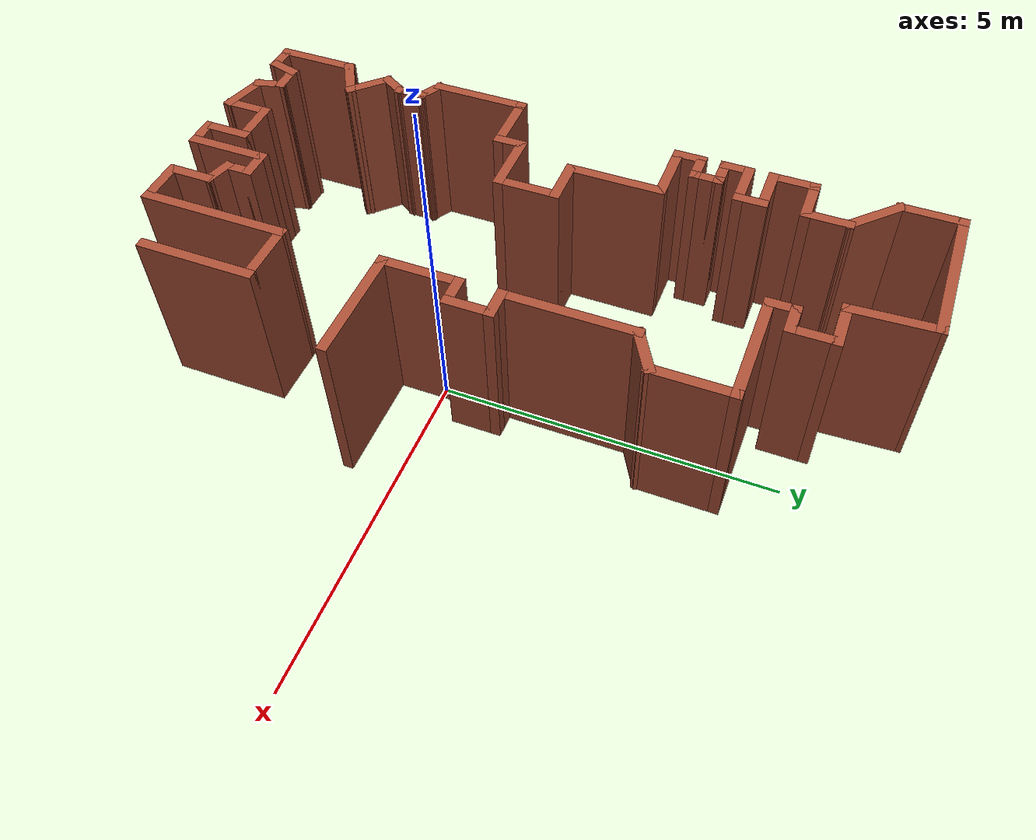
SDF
<sdf version="1.6">
 <model name="map_59">
  <pose>2.96986 0.975899 0 0 -0 0</pose>
  <link name="Wall_0">
   <collision name="Wall_0_Collision">
    <geometry><box><size>2.25 0.15 2.5</size></box></geometry>
    <pose>0 0 1.25 0 -0 0</pose>
   </collision>
   <visual name="Wall_0_Visual">
    <pose>0 0 1.25 0 -0 0</pose>
    <geometry><box><size>2.25 0.15 2.5</size></box></geometry>
    <material>
     <script><uri>file://media/materials/scripts/gazebo.material</uri><name>Gazebo/Bricks</name></script>
     <ambient>1 1 1 1</ambient>
    </material>
    <meta><layer>0</layer></meta>
   </visual>
   <pose>-5.34713 5.38602 0 0 -0 3.14159</pose>
  </link>
  <link name="Wall_1">
   <collision name="Wall_1_Collision">
    <geometry><box><size>1 0.15 2.5</size></box></geometry>
    <pose>0 0 1.25 0 -0 0</pose>
   </collision>
   <visual name="Wall_1_Visual">
    <pose>0 0 1.25 0 -0 0</pose>
    <geometry><box><size>1 0.15 2.5</size></box></geometry>
    <material>
     <script><uri>file://media/materials/scripts/gazebo.material</uri><name>Gazebo/Bricks</name></script>
     <ambient>1 1 1 1</ambient>
    </material>
    <meta><layer>0</layer></meta>
   </visual>
   <pose>-6.39713 4.96102 0 0 -0 -1.5708</pose>
  </link>
  <link name="Wall_165">
   <collision name="Wall_165_Collision">
    <geometry><box><size>1.75 0.15 2.5</size></box></geometry>
    <pose>0 0 1.25 0 -0 0</pose>
   </collision>
   <visual name="Wall_165_Visual">
    <pose>0 0 1.25 0 -0 0</pose>
    <geometry><box><size>1.75 0.15 2.5</size></box></geometry>
    <material>
     <script><uri>file://media/materials/scripts/gazebo.material</uri><name>Gazebo/Bricks</name></script>
     <ambient>1 1 1 1</ambient>
    </material>
    <meta><layer>0</layer></meta>
   </visual>
   <pose>-2.11013 -1.69005 0 0 -0 3.14159</pose>
  </link>
  <link name="Wall_166">
   <collision name="Wall_166_Collision">
    <geometry><box><size>1.25 0.15 2.5</size></box></geometry>
    <pose>0 0 1.25 0 -0 0</pose>
   </collision>
   <visual name="Wall_166_Visual">
    <pose>0 0 1.25 0 -0 0</pose>
    <geometry><box><size>1.25 0.15 2.5</size></box></geometry>
    <material>
     <script><uri>file://media/materials/scripts/gazebo.material</uri><name>Gazebo/Bricks</name></script>
     <ambient>1 1 1 1</ambient>
    </material>
    <meta><layer>0</layer></meta>
   </visual>
   <pose>-2.91013 -1.14005 0 0 -0 1.5708</pose>
  </link>
  <link name="Wall_167">
   <collision name="Wall_167_Collision">
    <geometry><box><size>0.5 0.15 2.5</size></box></geometry>
    <pose>0 0 1.25 0 -0 0</pose>
   </collision>
   <visual name="Wall_167_Visual">
    <pose>0 0 1.25 0 -0 0</pose>
    <geometry><box><size>0.5 0.15 2.5</size></box></geometry>
    <material>
     <script><uri>file://media/materials/scripts/gazebo.material</uri><name>Gazebo/Bricks</name></script>
     <ambient>1 1 1 1</ambient>
    </material>
    <meta><layer>0</layer></meta>
   </visual>
   <pose>-2.73513 -0.590047 0 0 -0 0</pose>
  </link>
  <link name="Wall_168">
   <collision name="Wall_168_Collision">
    <geometry><box><size>0.75 0.15 2.5</size></box></geometry>
    <pose>0 0 1.25 0 -0 0</pose>
   </collision>
   <visual name="Wall_168_Visual">
    <pose>0 0 1.25 0 -0 0</pose>
    <geometry><box><size>0.75 0.15 2.5</size></box></geometry>
    <material>
     <script><uri>file://media/materials/scripts/gazebo.material</uri><name>Gazebo/Bricks</name></script>
     <ambient>1 1 1 1</ambient>
    </material>
    <meta><layer>0</layer></meta>
   </visual>
   <pose>-2.56013 -0.290047 0 0 -0 1.5708</pose>
  </link>
  <link name="Wall_169">
   <collision name="Wall_169_Collision">
    <geometry><box><size>0.5 0.15 2.5</size></box></geometry>
    <pose>0 0 1.25 0 -0 0</pose>
   </collision>
   <visual name="Wall_169_Visual">
    <pose>0 0 1.25 0 -0 0</pose>
    <geometry><box><size>0.5 0.15 2.5</size></box></geometry>
    <material>
     <script><uri>file://media/materials/scripts/gazebo.material</uri><name>Gazebo/Bricks</name></script>
     <ambient>1 1 1 1</ambient>
    </material>
    <meta><layer>0</layer></meta>
   </visual>
   <pose>-2.73513 0.009953 0 0 -0 3.14159</pose>
  </link>
  <link name="Wall_17">
   <collision name="Wall_17_Collision">
    <geometry><box><size>0.5 0.15 2.5</size></box></geometry>
    <pose>0 0 1.25 0 -0 0</pose>
   </collision>
   <visual name="Wall_17_Visual">
    <pose>0 0 1.25 0 -0 0</pose>
    <geometry><box><size>0.5 0.15 2.5</size></box></geometry>
    <material>
     <script><uri>file://media/materials/scripts/gazebo.material</uri><name>Gazebo/Bricks</name></script>
     <ambient>1 1 1 1</ambient>
    </material>
    <meta><layer>0</layer></meta>
   </visual>
   <pose>-6.39609 2.20998 0 0 -0 -1.5708</pose>
  </link>
  <link name="Wall_170">
   <collision name="Wall_170_Collision">
    <geometry><box><size>2 0.15 2.5</size></box></geometry>
    <pose>0 0 1.25 0 -0 0</pose>
   </collision>
   <visual name="Wall_170_Visual">
    <pose>0 0 1.25 0 -0 0</pose>
    <geometry><box><size>2 0.15 2.5</size></box></geometry>
    <material>
     <script><uri>file://media/materials/scripts/gazebo.material</uri><name>Gazebo/Bricks</name></script>
     <ambient>1 1 1 1</ambient>
    </material>
    <meta><layer>0</layer></meta>
   </visual>
   <pose>-2.91013 0.934953 0 0 -0 1.5708</pose>
  </link>
  <link name="Wall_171">
   <collision name="Wall_171_Collision">
    <geometry><box><size>0.75 0.15 2.5</size></box></geometry>
    <pose>0 0 1.25 0 -0 0</pose>
   </collision>
   <visual name="Wall_171_Visual">
    <pose>0 0 1.25 0 -0 0</pose>
    <geometry><box><size>0.75 0.15 2.5</size></box></geometry>
    <material>
     <script><uri>file://media/materials/scripts/gazebo.material</uri><name>Gazebo/Bricks</name></script>
     <ambient>1 1 1 1</ambient>
    </material>
    <meta><layer>0</layer></meta>
   </visual>
   <pose>-2.65033 2.00995 0 0 -0 0.523599</pose>
  </link>
  <link name="Wall_172">
   <collision name="Wall_172_Collision">
    <geometry><box><size>1.25 0.15 2.5</size></box></geometry>
    <pose>0 0 1.25 0 -0 0</pose>
   </collision>
   <visual name="Wall_172_Visual">
    <pose>0 0 1.25 0 -0 0</pose>
    <geometry><box><size>1.25 0.15 2.5</size></box></geometry>
    <material>
     <script><uri>file://media/materials/scripts/gazebo.material</uri><name>Gazebo/Bricks</name></script>
     <ambient>1 1 1 1</ambient>
    </material>
    <meta><layer>0</layer></meta>
   </visual>
   <pose>-2.39052 2.70995 0 0 -0 1.5708</pose>
  </link>
  <link name="Wall_173">
   <collision name="Wall_173_Collision">
    <geometry><box><size>1.75 0.15 2.5</size></box></geometry>
    <pose>0 0 1.25 0 -0 0</pose>
   </collision>
   <visual name="Wall_173_Visual">
    <pose>0 0 1.25 0 -0 0</pose>
    <geometry><box><size>1.75 0.15 2.5</size></box></geometry>
    <material>
     <script><uri>file://media/materials/scripts/gazebo.material</uri><name>Gazebo/Bricks</name></script>
     <ambient>1 1 1 1</ambient>
    </material>
    <meta><layer>0</layer></meta>
   </visual>
   <pose>-3.19052 3.25995 0 0 -0 3.14159</pose>
  </link>
  <link name="Wall_174">
   <collision name="Wall_174_Collision">
    <geometry><box><size>0.5 0.15 2.5</size></box></geometry>
    <pose>0 0 1.25 0 -0 0</pose>
   </collision>
   <visual name="Wall_174_Visual">
    <pose>0 0 1.25 0 -0 0</pose>
    <geometry><box><size>0.5 0.15 2.5</size></box></geometry>
    <material>
     <script><uri>file://media/materials/scripts/gazebo.material</uri><name>Gazebo/Bricks</name></script>
     <ambient>1 1 1 1</ambient>
    </material>
    <meta><layer>0</layer></meta>
   </visual>
   <pose>-3.99052 3.43495 0 0 -0 1.5708</pose>
  </link>
  <link name="Wall_175">
   <collision name="Wall_175_Collision">
    <geometry><box><size>0.5 0.15 2.5</size></box></geometry>
    <pose>0 0 1.25 0 -0 0</pose>
   </collision>
   <visual name="Wall_175_Visual">
    <pose>0 0 1.25 0 -0 0</pose>
    <geometry><box><size>0.5 0.15 2.5</size></box></geometry>
    <material>
     <script><uri>file://media/materials/scripts/gazebo.material</uri><name>Gazebo/Bricks</name></script>
     <ambient>1 1 1 1</ambient>
    </material>
    <meta><layer>0</layer></meta>
   </visual>
   <pose>-3.81552 3.60995 0 0 -0 0</pose>
  </link>
  <link name="Wall_176">
   <collision name="Wall_176_Collision">
    <geometry><box><size>0.75 0.15 2.5</size></box></geometry>
    <pose>0 0 1.25 0 -0 0</pose>
   </collision>
   <visual name="Wall_176_Visual">
    <pose>0 0 1.25 0 -0 0</pose>
    <geometry><box><size>0.75 0.15 2.5</size></box></geometry>
    <material>
     <script><uri>file://media/materials/scripts/gazebo.material</uri><name>Gazebo/Bricks</name></script>
     <ambient>1 1 1 1</ambient>
    </material>
    <meta><layer>0</layer></meta>
   </visual>
   <pose>-3.64052 3.90995 0 0 -0 1.5708</pose>
  </link>
  <link name="Wall_177">
   <collision name="Wall_177_Collision">
    <geometry><box><size>0.75 0.15 2.5</size></box></geometry>
    <pose>0 0 1.25 0 -0 0</pose>
   </collision>
   <visual name="Wall_177_Visual">
    <pose>0 0 1.25 0 -0 0</pose>
    <geometry><box><size>0.75 0.15 2.5</size></box></geometry>
    <material>
     <script><uri>file://media/materials/scripts/gazebo.material</uri><name>Gazebo/Bricks</name></script>
     <ambient>1 1 1 1</ambient>
    </material>
    <meta><layer>0</layer></meta>
   </visual>
   <pose>-3.94052 4.20995 0 0 -0 3.14159</pose>
  </link>
  <link name="Wall_178">
   <collision name="Wall_178_Collision">
    <geometry><box><size>1.32743 0.15 2.5</size></box></geometry>
    <pose>0 0 1.25 0 -0 0</pose>
   </collision>
   <visual name="Wall_178_Visual">
    <pose>0 0 1.25 0 -0 0</pose>
    <geometry><box><size>1.32743 0.15 2.5</size></box></geometry>
    <material>
     <script><uri>file://media/materials/scripts/gazebo.material</uri><name>Gazebo/Bricks</name></script>
     <ambient>1 1 1 1</ambient>
    </material>
    <meta><layer>0</layer></meta>
   </visual>
   <pose>-4.26883 4.79799 0 0 -0 1.6189</pose>
  </link>
  <link name="Wall_18">
   <collision name="Wall_18_Collision">
    <geometry><box><size>0.5 0.15 2.5</size></box></geometry>
    <pose>0 0 1.25 0 -0 0</pose>
   </collision>
   <visual name="Wall_18_Visual">
    <pose>0 0 1.25 0 -0 0</pose>
    <geometry><box><size>0.5 0.15 2.5</size></box></geometry>
    <material>
     <script><uri>file://media/materials/scripts/gazebo.material</uri><name>Gazebo/Bricks</name></script>
     <ambient>1 1 1 1</ambient>
    </material>
    <meta><layer>0</layer></meta>
   </visual>
   <pose>-6.22109 2.03498 0 0 -0 0</pose>
  </link>
  <link name="Wall_19">
   <collision name="Wall_19_Collision">
    <geometry><box><size>0.5 0.15 2.5</size></box></geometry>
    <pose>0 0 1.25 0 -0 0</pose>
   </collision>
   <visual name="Wall_19_Visual">
    <pose>0 0 1.25 0 -0 0</pose>
    <geometry><box><size>0.5 0.15 2.5</size></box></geometry>
    <material>
     <script><uri>file://media/materials/scripts/gazebo.material</uri><name>Gazebo/Bricks</name></script>
     <ambient>1 1 1 1</ambient>
    </material>
    <meta><layer>0</layer></meta>
   </visual>
   <pose>-6.04609 1.85998 0 0 -0 -1.5708</pose>
  </link>
  <link name="Wall_2">
   <collision name="Wall_2_Collision">
    <geometry><box><size>1 0.15 2.5</size></box></geometry>
    <pose>0 0 1.25 0 -0 0</pose>
   </collision>
   <visual name="Wall_2_Visual">
    <pose>0 0 1.25 0 -0 0</pose>
    <geometry><box><size>1 0.15 2.5</size></box></geometry>
    <material>
     <script><uri>file://media/materials/scripts/gazebo.material</uri><name>Gazebo/Bricks</name></script>
     <ambient>1 1 1 1</ambient>
    </material>
    <meta><layer>0</layer></meta>
   </visual>
   <pose>-6.09661 4.2355 0 0 -0 -0.785398</pose>
  </link>
  <link name="Wall_20">
   <collision name="Wall_20_Collision">
    <geometry><box><size>0.5 0.15 2.5</size></box></geometry>
    <pose>0 0 1.25 0 -0 0</pose>
   </collision>
   <visual name="Wall_20_Visual">
    <pose>0 0 1.25 0 -0 0</pose>
    <geometry><box><size>0.5 0.15 2.5</size></box></geometry>
    <material>
     <script><uri>file://media/materials/scripts/gazebo.material</uri><name>Gazebo/Bricks</name></script>
     <ambient>1 1 1 1</ambient>
    </material>
    <meta><layer>0</layer></meta>
   </visual>
   <pose>-6.22109 1.68498 0 0 -0 3.14159</pose>
  </link>
  <link name="Wall_21">
   <collision name="Wall_21_Collision">
    <geometry><box><size>0.5 0.15 2.5</size></box></geometry>
    <pose>0 0 1.25 0 -0 0</pose>
   </collision>
   <visual name="Wall_21_Visual">
    <pose>0 0 1.25 0 -0 0</pose>
    <geometry><box><size>0.5 0.15 2.5</size></box></geometry>
    <material>
     <script><uri>file://media/materials/scripts/gazebo.material</uri><name>Gazebo/Bricks</name></script>
     <ambient>1 1 1 1</ambient>
    </material>
    <meta><layer>0</layer></meta>
   </visual>
   <pose>-6.39609 1.50998 0 0 -0 -1.5708</pose>
  </link>
  <link name="Wall_24">
   <collision name="Wall_24_Collision">
    <geometry><box><size>1 0.15 2.5</size></box></geometry>
    <pose>0 0 1.25 0 -0 0</pose>
   </collision>
   <visual name="Wall_24_Visual">
    <pose>0 0 1.25 0 -0 0</pose>
    <geometry><box><size>1 0.15 2.5</size></box></geometry>
    <material>
     <script><uri>file://media/materials/scripts/gazebo.material</uri><name>Gazebo/Bricks</name></script>
     <ambient>1 1 1 1</ambient>
    </material>
    <meta><layer>0</layer></meta>
   </visual>
   <pose>-5.97109 1.33498 0 0 -0 0</pose>
  </link>
  <link name="Wall_25">
   <collision name="Wall_25_Collision">
    <geometry><box><size>1.5 0.15 2.5</size></box></geometry>
    <pose>0 0 1.25 0 -0 0</pose>
   </collision>
   <visual name="Wall_25_Visual">
    <pose>0 0 1.25 0 -0 0</pose>
    <geometry><box><size>1.5 0.15 2.5</size></box></geometry>
    <material>
     <script><uri>file://media/materials/scripts/gazebo.material</uri><name>Gazebo/Bricks</name></script>
     <ambient>1 1 1 1</ambient>
    </material>
    <meta><layer>0</layer></meta>
   </visual>
   <pose>-5.54609 0.65998 0 0 -0 -1.5708</pose>
  </link>
  <link name="Wall_26">
   <collision name="Wall_26_Collision">
    <geometry><box><size>0.75 0.15 2.5</size></box></geometry>
    <pose>0 0 1.25 0 -0 0</pose>
   </collision>
   <visual name="Wall_26_Visual">
    <pose>0 0 1.25 0 -0 0</pose>
    <geometry><box><size>0.75 0.15 2.5</size></box></geometry>
    <material>
     <script><uri>file://media/materials/scripts/gazebo.material</uri><name>Gazebo/Bricks</name></script>
     <ambient>1 1 1 1</ambient>
    </material>
    <meta><layer>0</layer></meta>
   </visual>
   <pose>-5.24609 -0.01502 0 0 -0 0</pose>
  </link>
  <link name="Wall_27">
   <collision name="Wall_27_Collision">
    <geometry><box><size>1 0.15 2.5</size></box></geometry>
    <pose>0 0 1.25 0 -0 0</pose>
   </collision>
   <visual name="Wall_27_Visual">
    <pose>0 0 1.25 0 -0 0</pose>
    <geometry><box><size>1 0.15 2.5</size></box></geometry>
    <material>
     <script><uri>file://media/materials/scripts/gazebo.material</uri><name>Gazebo/Bricks</name></script>
     <ambient>1 1 1 1</ambient>
    </material>
    <meta><layer>0</layer></meta>
   </visual>
   <pose>-4.94609 -0.44002 0 0 -0 -1.5708</pose>
  </link>
  <link name="Wall_28">
   <collision name="Wall_28_Collision">
    <geometry><box><size>1 0.15 2.5</size></box></geometry>
    <pose>0 0 1.25 0 -0 0</pose>
   </collision>
   <visual name="Wall_28_Visual">
    <pose>0 0 1.25 0 -0 0</pose>
    <geometry><box><size>1 0.15 2.5</size></box></geometry>
    <material>
     <script><uri>file://media/materials/scripts/gazebo.material</uri><name>Gazebo/Bricks</name></script>
     <ambient>1 1 1 1</ambient>
    </material>
    <meta><layer>0</layer></meta>
   </visual>
   <pose>-5.37109 -0.86502 0 0 -0 3.14159</pose>
  </link>
  <link name="Wall_29">
   <collision name="Wall_29_Collision">
    <geometry><box><size>0.5 0.15 2.5</size></box></geometry>
    <pose>0 0 1.25 0 -0 0</pose>
   </collision>
   <visual name="Wall_29_Visual">
    <pose>0 0 1.25 0 -0 0</pose>
    <geometry><box><size>0.5 0.15 2.5</size></box></geometry>
    <material>
     <script><uri>file://media/materials/scripts/gazebo.material</uri><name>Gazebo/Bricks</name></script>
     <ambient>1 1 1 1</ambient>
    </material>
    <meta><layer>0</layer></meta>
   </visual>
   <pose>-5.79609 -1.04002 0 0 -0 -1.5708</pose>
  </link>
  <link name="Wall_3">
   <collision name="Wall_3_Collision">
    <geometry><box><size>0.75 0.15 2.5</size></box></geometry>
    <pose>0 0 1.25 0 -0 0</pose>
   </collision>
   <visual name="Wall_3_Visual">
    <pose>0 0 1.25 0 -0 0</pose>
    <geometry><box><size>0.75 0.15 2.5</size></box></geometry>
    <material>
     <script><uri>file://media/materials/scripts/gazebo.material</uri><name>Gazebo/Bricks</name></script>
     <ambient>1 1 1 1</ambient>
    </material>
    <meta><layer>0</layer></meta>
   </visual>
   <pose>-5.79609 3.63498 0 0 -0 -1.5708</pose>
  </link>
  <link name="Wall_32">
   <collision name="Wall_32_Collision">
    <geometry><box><size>1 0.15 2.5</size></box></geometry>
    <pose>0 0 1.25 0 -0 0</pose>
   </collision>
   <visual name="Wall_32_Visual">
    <pose>0 0 1.25 0 -0 0</pose>
    <geometry><box><size>1 0.15 2.5</size></box></geometry>
    <material>
     <script><uri>file://media/materials/scripts/gazebo.material</uri><name>Gazebo/Bricks</name></script>
     <ambient>1 1 1 1</ambient>
    </material>
    <meta><layer>0</layer></meta>
   </visual>
   <pose>-6.22109 -1.21502 0 0 -0 3.14159</pose>
  </link>
  <link name="Wall_33">
   <collision name="Wall_33_Collision">
    <geometry><box><size>1.5 0.15 2.5</size></box></geometry>
    <pose>0 0 1.25 0 -0 0</pose>
   </collision>
   <visual name="Wall_33_Visual">
    <pose>0 0 1.25 0 -0 0</pose>
    <geometry><box><size>1.5 0.15 2.5</size></box></geometry>
    <material>
     <script><uri>file://media/materials/scripts/gazebo.material</uri><name>Gazebo/Bricks</name></script>
     <ambient>1 1 1 1</ambient>
    </material>
    <meta><layer>0</layer></meta>
   </visual>
   <pose>-6.64609 -1.89002 0 0 -0 -1.5708</pose>
  </link>
  <link name="Wall_34">
   <collision name="Wall_34_Collision">
    <geometry><box><size>0.5 0.15 2.5</size></box></geometry>
    <pose>0 0 1.25 0 -0 0</pose>
   </collision>
   <visual name="Wall_34_Visual">
    <pose>0 0 1.25 0 -0 0</pose>
    <geometry><box><size>0.5 0.15 2.5</size></box></geometry>
    <material>
     <script><uri>file://media/materials/scripts/gazebo.material</uri><name>Gazebo/Bricks</name></script>
     <ambient>1 1 1 1</ambient>
    </material>
    <meta><layer>0</layer></meta>
   </visual>
   <pose>-6.49454 -2.65252 0 0 -0 -0.523599</pose>
  </link>
  <link name="Wall_35">
   <collision name="Wall_35_Collision">
    <geometry><box><size>0.5 0.15 2.5</size></box></geometry>
    <pose>0 0 1.25 0 -0 0</pose>
   </collision>
   <visual name="Wall_35_Visual">
    <pose>0 0 1.25 0 -0 0</pose>
    <geometry><box><size>0.5 0.15 2.5</size></box></geometry>
    <material>
     <script><uri>file://media/materials/scripts/gazebo.material</uri><name>Gazebo/Bricks</name></script>
     <ambient>1 1 1 1</ambient>
    </material>
    <meta><layer>0</layer></meta>
   </visual>
   <pose>-6.34298 -2.91502 0 0 -0 -1.5708</pose>
  </link>
  <link name="Wall_36">
   <collision name="Wall_36_Collision">
    <geometry><box><size>0.5 0.15 2.5</size></box></geometry>
    <pose>0 0 1.25 0 -0 0</pose>
   </collision>
   <visual name="Wall_36_Visual">
    <pose>0 0 1.25 0 -0 0</pose>
    <geometry><box><size>0.5 0.15 2.5</size></box></geometry>
    <material>
     <script><uri>file://media/materials/scripts/gazebo.material</uri><name>Gazebo/Bricks</name></script>
     <ambient>1 1 1 1</ambient>
    </material>
    <meta><layer>0</layer></meta>
   </visual>
   <pose>-6.43048 -3.24157 0 0 -0 -2.0944</pose>
  </link>
  <link name="Wall_37">
   <collision name="Wall_37_Collision">
    <geometry><box><size>0.75 0.15 2.5</size></box></geometry>
    <pose>0 0 1.25 0 -0 0</pose>
   </collision>
   <visual name="Wall_37_Visual">
    <pose>0 0 1.25 0 -0 0</pose>
    <geometry><box><size>0.75 0.15 2.5</size></box></geometry>
    <material>
     <script><uri>file://media/materials/scripts/gazebo.material</uri><name>Gazebo/Bricks</name></script>
     <ambient>1 1 1 1</ambient>
    </material>
    <meta><layer>0</layer></meta>
   </visual>
   <pose>-6.30585 -3.60526 0 0 -0 -0.785398</pose>
  </link>
  <link name="Wall_38">
   <collision name="Wall_38_Collision">
    <geometry><box><size>0.75 0.15 2.5</size></box></geometry>
    <pose>0 0 1.25 0 -0 0</pose>
   </collision>
   <visual name="Wall_38_Visual">
    <pose>0 0 1.25 0 -0 0</pose>
    <geometry><box><size>0.75 0.15 2.5</size></box></geometry>
    <material>
     <script><uri>file://media/materials/scripts/gazebo.material</uri><name>Gazebo/Bricks</name></script>
     <ambient>1 1 1 1</ambient>
    </material>
    <meta><layer>0</layer></meta>
   </visual>
   <pose>-6.35353 -3.96739 0 0 -0 -2.61799</pose>
  </link>
  <link name="Wall_39">
   <collision name="Wall_39_Collision">
    <geometry><box><size>1.25 0.15 2.5</size></box></geometry>
    <pose>0 0 1.25 0 -0 0</pose>
   </collision>
   <visual name="Wall_39_Visual">
    <pose>0 0 1.25 0 -0 0</pose>
    <geometry><box><size>1.25 0.15 2.5</size></box></geometry>
    <material>
     <script><uri>file://media/materials/scripts/gazebo.material</uri><name>Gazebo/Bricks</name></script>
     <ambient>1 1 1 1</ambient>
    </material>
    <meta><layer>0</layer></meta>
   </visual>
   <pose>-6.61333 -4.66739 0 0 -0 -1.5708</pose>
  </link>
  <link name="Wall_4">
   <collision name="Wall_4_Collision">
    <geometry><box><size>0.75 0.15 2.5</size></box></geometry>
    <pose>0 0 1.25 0 -0 0</pose>
   </collision>
   <visual name="Wall_4_Visual">
    <pose>0 0 1.25 0 -0 0</pose>
    <geometry><box><size>0.75 0.15 2.5</size></box></geometry>
    <material>
     <script><uri>file://media/materials/scripts/gazebo.material</uri><name>Gazebo/Bricks</name></script>
     <ambient>1 1 1 1</ambient>
    </material>
    <meta><layer>0</layer></meta>
   </visual>
   <pose>-6.09609 3.33498 0 0 -0 3.14159</pose>
  </link>
  <link name="Wall_40">
   <collision name="Wall_40_Collision">
    <geometry><box><size>0.5 0.15 2.5</size></box></geometry>
    <pose>0 0 1.25 0 -0 0</pose>
   </collision>
   <visual name="Wall_40_Visual">
    <pose>0 0 1.25 0 -0 0</pose>
    <geometry><box><size>0.5 0.15 2.5</size></box></geometry>
    <material>
     <script><uri>file://media/materials/scripts/gazebo.material</uri><name>Gazebo/Bricks</name></script>
     <ambient>1 1 1 1</ambient>
    </material>
    <meta><layer>0</layer></meta>
   </visual>
   <pose>-6.43833 -5.21739 0 0 -0 0</pose>
  </link>
  <link name="Wall_41">
   <collision name="Wall_41_Collision">
    <geometry><box><size>0.5 0.15 2.5</size></box></geometry>
    <pose>0 0 1.25 0 -0 0</pose>
   </collision>
   <visual name="Wall_41_Visual">
    <pose>0 0 1.25 0 -0 0</pose>
    <geometry><box><size>0.5 0.15 2.5</size></box></geometry>
    <material>
     <script><uri>file://media/materials/scripts/gazebo.material</uri><name>Gazebo/Bricks</name></script>
     <ambient>1 1 1 1</ambient>
    </material>
    <meta><layer>0</layer></meta>
   </visual>
   <pose>-6.21804 -5.04835 0 0 -0 1.309</pose>
  </link>
  <link name="Wall_42">
   <collision name="Wall_42_Collision">
    <geometry><box><size>0.5 0.15 2.5</size></box></geometry>
    <pose>0 0 1.25 0 -0 0</pose>
   </collision>
   <visual name="Wall_42_Visual">
    <pose>0 0 1.25 0 -0 0</pose>
    <geometry><box><size>0.5 0.15 2.5</size></box></geometry>
    <material>
     <script><uri>file://media/materials/scripts/gazebo.material</uri><name>Gazebo/Bricks</name></script>
     <ambient>1 1 1 1</ambient>
    </material>
    <meta><layer>0</layer></meta>
   </visual>
   <pose>-5.99775 -4.87932 0 0 -0 0</pose>
  </link>
  <link name="Wall_43">
   <collision name="Wall_43_Collision">
    <geometry><box><size>0.5 0.15 2.5</size></box></geometry>
    <pose>0 0 1.25 0 -0 0</pose>
   </collision>
   <visual name="Wall_43_Visual">
    <pose>0 0 1.25 0 -0 0</pose>
    <geometry><box><size>0.5 0.15 2.5</size></box></geometry>
    <material>
     <script><uri>file://media/materials/scripts/gazebo.material</uri><name>Gazebo/Bricks</name></script>
     <ambient>1 1 1 1</ambient>
    </material>
    <meta><layer>0</layer></meta>
   </visual>
   <pose>-5.77745 -5.04835 0 0 -0 -1.309</pose>
  </link>
  <link name="Wall_44">
   <collision name="Wall_44_Collision">
    <geometry><box><size>0.75 0.15 2.5</size></box></geometry>
    <pose>0 0 1.25 0 -0 0</pose>
   </collision>
   <visual name="Wall_44_Visual">
    <pose>0 0 1.25 0 -0 0</pose>
    <geometry><box><size>0.75 0.15 2.5</size></box></geometry>
    <material>
     <script><uri>file://media/materials/scripts/gazebo.material</uri><name>Gazebo/Bricks</name></script>
     <ambient>1 1 1 1</ambient>
    </material>
    <meta><layer>0</layer></meta>
   </visual>
   <pose>-5.44238 -5.29504 0 0 -0 -0.261799</pose>
  </link>
  <link name="Wall_45">
   <collision name="Wall_45_Collision">
    <geometry><box><size>0.75 0.15 2.5</size></box></geometry>
    <pose>0 0 1.25 0 -0 0</pose>
   </collision>
   <visual name="Wall_45_Visual">
    <pose>0 0 1.25 0 -0 0</pose>
    <geometry><box><size>0.75 0.15 2.5</size></box></geometry>
    <material>
     <script><uri>file://media/materials/scripts/gazebo.material</uri><name>Gazebo/Bricks</name></script>
     <ambient>1 1 1 1</ambient>
    </material>
    <meta><layer>0</layer></meta>
   </visual>
   <pose>-5.15261 -5.07268 0 0 -0 1.5708</pose>
  </link>
  <link name="Wall_48">
   <collision name="Wall_48_Collision">
    <geometry><box><size>0.75 0.15 2.5</size></box></geometry>
    <pose>0 0 1.25 0 -0 0</pose>
   </collision>
   <visual name="Wall_48_Visual">
    <pose>0 0 1.25 0 -0 0</pose>
    <geometry><box><size>0.75 0.15 2.5</size></box></geometry>
    <material>
     <script><uri>file://media/materials/scripts/gazebo.material</uri><name>Gazebo/Bricks</name></script>
     <ambient>1 1 1 1</ambient>
    </material>
    <meta><layer>0</layer></meta>
   </visual>
   <pose>-4.8526 -4.77268 0 0 -0 0</pose>
  </link>
  <link name="Wall_49">
   <collision name="Wall_49_Collision">
    <geometry><box><size>0.75 0.15 2.5</size></box></geometry>
    <pose>0 0 1.25 0 -0 0</pose>
   </collision>
   <visual name="Wall_49_Visual">
    <pose>0 0 1.25 0 -0 0</pose>
    <geometry><box><size>0.75 0.15 2.5</size></box></geometry>
    <material>
     <script><uri>file://media/materials/scripts/gazebo.material</uri><name>Gazebo/Bricks</name></script>
     <ambient>1 1 1 1</ambient>
    </material>
    <meta><layer>0</layer></meta>
   </visual>
   <pose>-4.5526 -5.07268 0 0 -0 -1.5708</pose>
  </link>
  <link name="Wall_5">
   <collision name="Wall_5_Collision">
    <geometry><box><size>0.75 0.15 2.5</size></box></geometry>
    <pose>0 0 1.25 0 -0 0</pose>
   </collision>
   <visual name="Wall_5_Visual">
    <pose>0 0 1.25 0 -0 0</pose>
    <geometry><box><size>0.75 0.15 2.5</size></box></geometry>
    <material>
     <script><uri>file://media/materials/scripts/gazebo.material</uri><name>Gazebo/Bricks</name></script>
     <ambient>1 1 1 1</ambient>
    </material>
    <meta><layer>0</layer></meta>
   </visual>
   <pose>-6.39609 3.03498 0 0 -0 -1.5708</pose>
  </link>
  <link name="Wall_50">
   <collision name="Wall_50_Collision">
    <geometry><box><size>0.5 0.15 2.5</size></box></geometry>
    <pose>0 0 1.25 0 -0 0</pose>
   </collision>
   <visual name="Wall_50_Visual">
    <pose>0 0 1.25 0 -0 0</pose>
    <geometry><box><size>0.5 0.15 2.5</size></box></geometry>
    <material>
     <script><uri>file://media/materials/scripts/gazebo.material</uri><name>Gazebo/Bricks</name></script>
     <ambient>1 1 1 1</ambient>
    </material>
    <meta><layer>0</layer></meta>
   </visual>
   <pose>-4.3776 -5.37268 0 0 -0 0</pose>
  </link>
  <link name="Wall_53">
   <collision name="Wall_53_Collision">
    <geometry><box><size>1.25 0.15 2.5</size></box></geometry>
    <pose>0 0 1.25 0 -0 0</pose>
   </collision>
   <visual name="Wall_53_Visual">
    <pose>0 0 1.25 0 -0 0</pose>
    <geometry><box><size>1.25 0.15 2.5</size></box></geometry>
    <material>
     <script><uri>file://media/materials/scripts/gazebo.material</uri><name>Gazebo/Bricks</name></script>
     <ambient>1 1 1 1</ambient>
    </material>
    <meta><layer>0</layer></meta>
   </visual>
   <pose>-4.20261 -4.82268 0 0 -0 1.5708</pose>
  </link>
  <link name="Wall_54">
   <collision name="Wall_54_Collision">
    <geometry><box><size>0.5 0.15 2.5</size></box></geometry>
    <pose>0 0 1.25 0 -0 0</pose>
   </collision>
   <visual name="Wall_54_Visual">
    <pose>0 0 1.25 0 -0 0</pose>
    <geometry><box><size>0.5 0.15 2.5</size></box></geometry>
    <material>
     <script><uri>file://media/materials/scripts/gazebo.material</uri><name>Gazebo/Bricks</name></script>
     <ambient>1 1 1 1</ambient>
    </material>
    <meta><layer>0</layer></meta>
   </visual>
   <pose>-4.02761 -4.27268 0 0 -0 0</pose>
  </link>
  <link name="Wall_55">
   <collision name="Wall_55_Collision">
    <geometry><box><size>0.5 0.15 2.5</size></box></geometry>
    <pose>0 0 1.25 0 -0 0</pose>
   </collision>
   <visual name="Wall_55_Visual">
    <pose>0 0 1.25 0 -0 0</pose>
    <geometry><box><size>0.5 0.15 2.5</size></box></geometry>
    <material>
     <script><uri>file://media/materials/scripts/gazebo.material</uri><name>Gazebo/Bricks</name></script>
     <ambient>1 1 1 1</ambient>
    </material>
    <meta><layer>0</layer></meta>
   </visual>
   <pose>-3.85261 -4.44768 0 0 -0 -1.5708</pose>
  </link>
  <link name="Wall_56">
   <collision name="Wall_56_Collision">
    <geometry><box><size>0.5 0.15 2.5</size></box></geometry>
    <pose>0 0 1.25 0 -0 0</pose>
   </collision>
   <visual name="Wall_56_Visual">
    <pose>0 0 1.25 0 -0 0</pose>
    <geometry><box><size>0.5 0.15 2.5</size></box></geometry>
    <material>
     <script><uri>file://media/materials/scripts/gazebo.material</uri><name>Gazebo/Bricks</name></script>
     <ambient>1 1 1 1</ambient>
    </material>
    <meta><layer>0</layer></meta>
   </visual>
   <pose>-3.68357 -4.66798 0 0 -0 -0.261799</pose>
  </link>
  <link name="Wall_57">
   <collision name="Wall_57_Collision">
    <geometry><box><size>0.75 0.15 2.5</size></box></geometry>
    <pose>0 0 1.25 0 -0 0</pose>
   </collision>
   <visual name="Wall_57_Visual">
    <pose>0 0 1.25 0 -0 0</pose>
    <geometry><box><size>0.75 0.15 2.5</size></box></geometry>
    <material>
     <script><uri>file://media/materials/scripts/gazebo.material</uri><name>Gazebo/Bricks</name></script>
     <ambient>1 1 1 1</ambient>
    </material>
    <meta><layer>0</layer></meta>
   </visual>
   <pose>-3.51453 -5.01327 0 0 -0 -1.5708</pose>
  </link>
  <link name="Wall_58">
   <collision name="Wall_58_Collision">
    <geometry><box><size>0.75 0.15 2.5</size></box></geometry>
    <pose>0 0 1.25 0 -0 0</pose>
   </collision>
   <visual name="Wall_58_Visual">
    <pose>0 0 1.25 0 -0 0</pose>
    <geometry><box><size>0.75 0.15 2.5</size></box></geometry>
    <material>
     <script><uri>file://media/materials/scripts/gazebo.material</uri><name>Gazebo/Bricks</name></script>
     <ambient>1 1 1 1</ambient>
    </material>
    <meta><layer>0</layer></meta>
   </visual>
   <pose>-3.21453 -5.31327 0 0 -0 0</pose>
  </link>
  <link name="Wall_59">
   <collision name="Wall_59_Collision">
    <geometry><box><size>2.25 0.15 2.5</size></box></geometry>
    <pose>0 0 1.25 0 -0 0</pose>
   </collision>
   <visual name="Wall_59_Visual">
    <pose>0 0 1.25 0 -0 0</pose>
    <geometry><box><size>2.25 0.15 2.5</size></box></geometry>
    <material>
     <script><uri>file://media/materials/scripts/gazebo.material</uri><name>Gazebo/Bricks</name></script>
     <ambient>1 1 1 1</ambient>
    </material>
    <meta><layer>0</layer></meta>
   </visual>
   <pose>-2.91453 -4.26327 0 0 -0 1.5708</pose>
  </link>
  <link name="Wall_6">
   <collision name="Wall_6_Collision">
    <geometry><box><size>0.75 0.15 2.5</size></box></geometry>
    <pose>0 0 1.25 0 -0 0</pose>
   </collision>
   <visual name="Wall_6_Visual">
    <pose>0 0 1.25 0 -0 0</pose>
    <geometry><box><size>0.75 0.15 2.5</size></box></geometry>
    <material>
     <script><uri>file://media/materials/scripts/gazebo.material</uri><name>Gazebo/Bricks</name></script>
     <ambient>1 1 1 1</ambient>
    </material>
    <meta><layer>0</layer></meta>
   </visual>
   <pose>-6.09609 2.73498 0 0 -0 0</pose>
  </link>
  <link name="Wall_60">
   <collision name="Wall_60_Collision">
    <geometry><box><size>1 0.15 2.5</size></box></geometry>
    <pose>0 0 1.25 0 -0 0</pose>
   </collision>
   <visual name="Wall_60_Visual">
    <pose>0 0 1.25 0 -0 0</pose>
    <geometry><box><size>1 0.15 2.5</size></box></geometry>
    <material>
     <script><uri>file://media/materials/scripts/gazebo.material</uri><name>Gazebo/Bricks</name></script>
     <ambient>1 1 1 1</ambient>
    </material>
    <meta><layer>0</layer></meta>
   </visual>
   <pose>-2.48953 -3.21327 0 0 -0 0</pose>
  </link>
  <link name="Wall_61">
   <collision name="Wall_61_Collision">
    <geometry><box><size>1.75 0.15 2.5</size></box></geometry>
    <pose>0 0 1.25 0 -0 0</pose>
   </collision>
   <visual name="Wall_61_Visual">
    <pose>0 0 1.25 0 -0 0</pose>
    <geometry><box><size>1.75 0.15 2.5</size></box></geometry>
    <material>
     <script><uri>file://media/materials/scripts/gazebo.material</uri><name>Gazebo/Bricks</name></script>
     <ambient>1 1 1 1</ambient>
    </material>
    <meta><layer>0</layer></meta>
   </visual>
   <pose>-2.06453 -4.01327 0 0 -0 -1.5708</pose>
  </link>
  <link name="Wall_7">
   <collision name="Wall_7_Collision">
    <geometry><box><size>0.5 0.15 2.5</size></box></geometry>
    <pose>0 0 1.25 0 -0 0</pose>
   </collision>
   <visual name="Wall_7_Visual">
    <pose>0 0 1.25 0 -0 0</pose>
    <geometry><box><size>0.5 0.15 2.5</size></box></geometry>
    <material>
     <script><uri>file://media/materials/scripts/gazebo.material</uri><name>Gazebo/Bricks</name></script>
     <ambient>1 1 1 1</ambient>
    </material>
    <meta><layer>0</layer></meta>
   </visual>
   <pose>-5.79609 2.55998 0 0 -0 -1.5708</pose>
  </link>
  <link name="Wall_8">
   <collision name="Wall_8_Collision">
    <geometry><box><size>0.75 0.15 2.5</size></box></geometry>
    <pose>0 0 1.25 0 -0 0</pose>
   </collision>
   <visual name="Wall_8_Visual">
    <pose>0 0 1.25 0 -0 0</pose>
    <geometry><box><size>0.75 0.15 2.5</size></box></geometry>
    <material>
     <script><uri>file://media/materials/scripts/gazebo.material</uri><name>Gazebo/Bricks</name></script>
     <ambient>1 1 1 1</ambient>
    </material>
    <meta><layer>0</layer></meta>
   </visual>
   <pose>-6.09609 2.38498 0 0 -0 3.14159</pose>
  </link>
  <static>1</static>
 </model>
</sdf>
